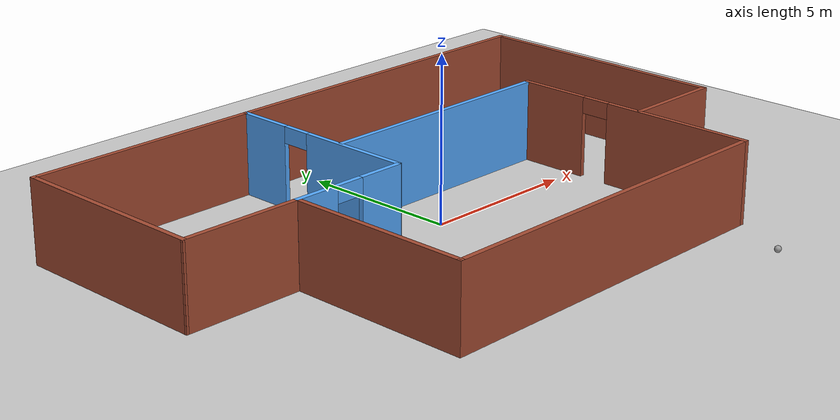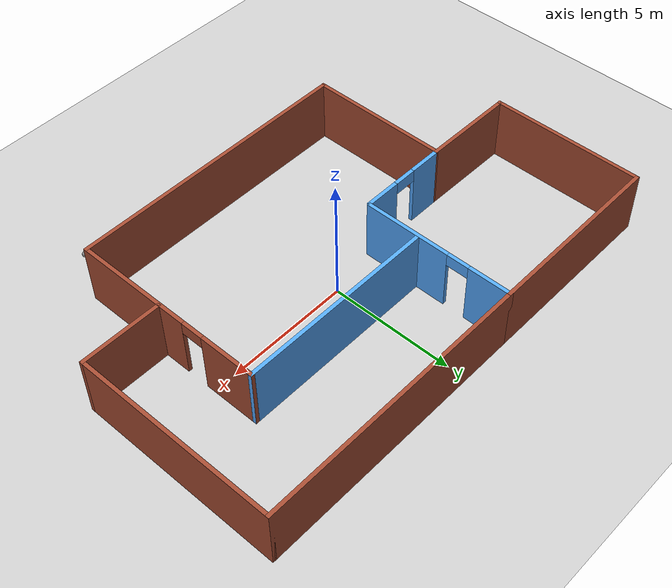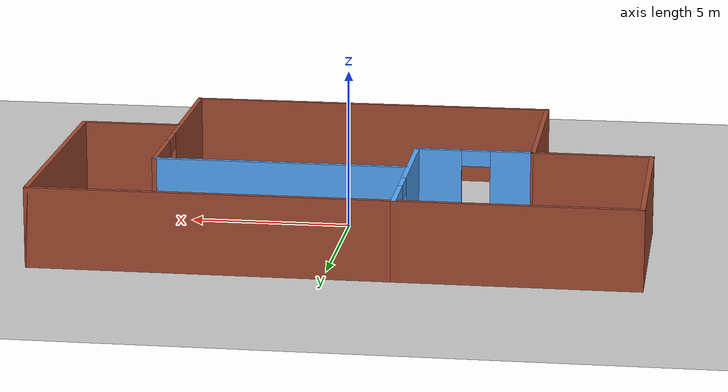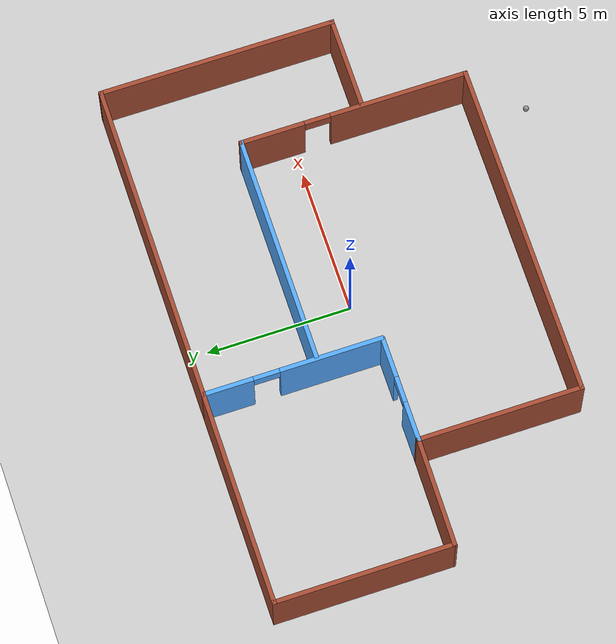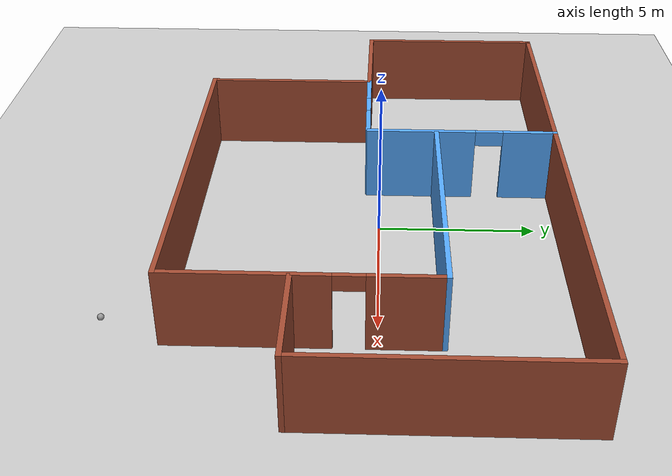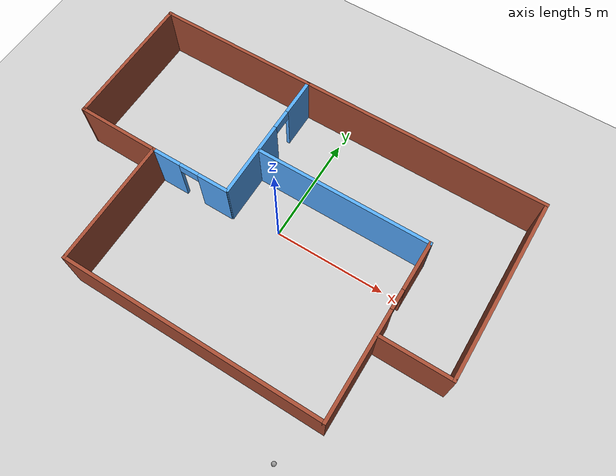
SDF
<sdf version="1.6">
 <world name="default">
  <plugin name="hello" filename="libhello.so"/>
  <light name="sun" type="directional">
   <pose>0 0 10 0 -0 0</pose>
   <diffuse>0.8 0.8 0.8 1</diffuse>
   <specular>0.2 0.2 0.2 1</specular>
   <attenuation>
    <range>1000</range>
    <constant>0.9</constant>
    <linear>0.01</linear>
    <quadratic>0.001</quadratic>
   </attenuation>
   <direction>-0.5 0.1 -0.9</direction>
  </light>
  <model name="ground_plane">
   <static>1</static>
   <link name="link">
    <collision name="collision">
     <geometry><plane><normal>0 0 1</normal><size>100 100</size></plane></geometry>
     <surface>
      <contact><collide_bitmask>65535</collide_bitmask></contact>
      <friction><ode><mu>100</mu><mu2>50</mu2></ode></friction>
     </surface>
    </collision>
    <visual name="visual">
     <cast_shadows>0</cast_shadows>
     <geometry><plane><normal>0 0 1</normal><size>100 100</size></plane></geometry>
     <material>
      <script><uri>file://media/materials/scripts/gazebo.material</uri><name>Gazebo/Grey</name></script>
     </material>
    </visual>
   </link>
  </model>
  <gravity>0 0 -9.8</gravity>
  <magnetic_field>6e-06 2.3e-05 -4.2e-05</magnetic_field>
  <atmosphere type="adiabatic"/>
  <physics name="default_physics" default="0" type="ode">
   <max_step_size>0.001</max_step_size>
   <real_time_factor>1</real_time_factor>
   <real_time_update_rate>1000</real_time_update_rate>
  </physics>
  <scene><ambient>0.4 0.4 0.4 1</ambient><background>0.7 0.7 0.7 1</background><shadows>1</shadows></scene>
  <spherical_coordinates>
   <surface_model>EARTH_WGS84</surface_model>
   <latitude_deg>0</latitude_deg>
   <longitude_deg>0</longitude_deg>
   <elevation>0</elevation>
   <heading_deg>0</heading_deg>
  </spherical_coordinates>
  <model name="building_0">
   <pose>-0.23034 -0.13472 0 0 -0 0</pose>
   <link name="Wall_47">
    <collision name="Wall_47_Collision">
     <geometry><box><size>6.25 0.15 2.5</size></box></geometry>
     <pose>0 0 1.25 0 -0 0</pose>
    </collision>
    <visual name="Wall_47_Visual">
     <pose>0 0 1.25 0 -0 0</pose>
     <geometry><box><size>6.25 0.15 2.5</size></box></geometry>
     <material>
      <script><uri>file://media/materials/scripts/gazebo.material</uri><name>Gazebo/Bricks</name></script>
      <ambient>1 1 1 1</ambient>
     </material>
     <meta><layer>0</layer></meta>
    </visual>
    <pose>-9.22464 2.81793 0 0 -0 1.5708</pose>
   </link>
   <link name="Wall_48">
    <collision name="Wall_48_Collision">
     <geometry><box><size>7.5 0.15 2.5</size></box></geometry>
     <pose>0 0 1.25 0 -0 0</pose>
    </collision>
    <visual name="Wall_48_Visual">
     <pose>0 0 1.25 0 -0 0</pose>
     <geometry><box><size>7.5 0.15 2.5</size></box></geometry>
     <material>
      <script><uri>file://media/materials/scripts/gazebo.material</uri><name>Gazebo/Bricks</name></script>
      <ambient>1 1 1 1</ambient>
     </material>
     <meta><layer>0</layer></meta>
    </visual>
    <pose>-5.54964 5.86794 0 0 -0 0</pose>
   </link>
   <link name="Wall_49">
    <pose>-1.87464 2.81793 0 0 0 -1.5708</pose>
    <visual name="Wall_49_Visual_0">
     <pose>-2.2354 0 1.25 0 -0 0</pose>
     <geometry><box><size>1.7792 0.15 2.5</size></box></geometry>
     <material>
      <script><uri>file://media/materials/scripts/gazebo.material</uri><name>Gazebo/Grey</name></script>
      <ambient>0.333333 0.666667 1 1</ambient>
     </material>
     <meta><layer>0</layer></meta>
    </visual>
    <collision name="Wall_49_Collision_0">
     <geometry><box><size>1.7792 0.15 2.5</size></box></geometry>
     <pose>-2.2354 0 1.25 0 -0 0</pose>
    </collision>
    <visual name="Wall_49_Visual_1">
     <pose>1.3396 0 1.25 0 -0 0</pose>
     <geometry><box><size>3.5708 0.15 2.5</size></box></geometry>
     <material>
      <script><uri>file://media/materials/scripts/gazebo.material</uri><name>Gazebo/Grey</name></script>
      <ambient>0.333333 0.666667 1 1</ambient>
     </material>
     <meta><layer>0</layer></meta>
    </visual>
    <collision name="Wall_49_Collision_1">
     <geometry><box><size>3.5708 0.15 2.5</size></box></geometry>
     <pose>1.3396 0 1.25 0 -0 0</pose>
    </collision>
    <visual name="Wall_49_Visual_2">
     <pose>-0.895797 0 2.25 0 -0 0</pose>
     <geometry><box><size>0.9 0.15 0.5</size></box></geometry>
     <material>
      <script><uri>file://media/materials/scripts/gazebo.material</uri><name>Gazebo/Grey</name></script>
      <ambient>0.333333 0.666667 1 1</ambient>
     </material>
     <meta><layer>0</layer></meta>
    </visual>
    <collision name="Wall_49_Collision_2">
     <geometry><box><size>0.9 0.15 0.5</size></box></geometry>
     <pose>-0.895797 0 2.25 0 -0 0</pose>
    </collision>
   </link>
   <link name="Wall_52">
    <collision name="Wall_52_Collision">
     <geometry><box><size>5.75 0.15 2.5</size></box></geometry>
     <pose>0 0 1.25 0 -0 0</pose>
    </collision>
    <visual name="Wall_52_Visual">
     <pose>0 0 1.25 0 -0 0</pose>
     <geometry><box><size>5.75 0.15 2.5</size></box></geometry>
     <material>
      <script><uri>file://media/materials/scripts/gazebo.material</uri><name>Gazebo/Bricks</name></script>
      <ambient>1 1 1 1</ambient>
     </material>
     <meta><layer>0</layer></meta>
    </visual>
    <pose>-5.52994 -3.06793 0 0 0 -1.5708</pose>
   </link>
   <link name="Wall_53">
    <collision name="Wall_53_Collision">
     <geometry><box><size>11.75 0.15 2.5</size></box></geometry>
     <pose>0 0 1.25 0 -0 0</pose>
    </collision>
    <visual name="Wall_53_Visual">
     <pose>0 0 1.25 0 -0 0</pose>
     <geometry><box><size>11.75 0.15 2.5</size></box></geometry>
     <material>
      <script><uri>file://media/materials/scripts/gazebo.material</uri><name>Gazebo/Bricks</name></script>
      <ambient>1 1 1 1</ambient>
     </material>
     <meta><layer>0</layer></meta>
    </visual>
    <pose>0.270063 -5.86794 0 0 -0 0</pose>
   </link>
   <link name="Wall_54">
    <pose>6.07006 -1.94294 0 0 -0 1.5708</pose>
    <visual name="Wall_54_Visual_0">
     <pose>-1.58479 0 1.25 0 -0 0</pose>
     <geometry><box><size>4.83042 0.15 2.5</size></box></geometry>
     <material>
      <script><uri>file://media/materials/scripts/gazebo.material</uri><name>Gazebo/Bricks</name></script>
      <ambient>1 1 1 1</ambient>
     </material>
     <meta><layer>0</layer></meta>
    </visual>
    <collision name="Wall_54_Collision_0">
     <geometry><box><size>4.83042 0.15 2.5</size></box></geometry>
     <pose>-1.58479 0 1.25 0 -0 0</pose>
    </collision>
    <visual name="Wall_54_Visual_1">
     <pose>2.86521 0 1.25 0 -0 0</pose>
     <geometry><box><size>2.26958 0.15 2.5</size></box></geometry>
     <material>
      <script><uri>file://media/materials/scripts/gazebo.material</uri><name>Gazebo/Bricks</name></script>
      <ambient>1 1 1 1</ambient>
     </material>
     <meta><layer>0</layer></meta>
    </visual>
    <collision name="Wall_54_Collision_1">
     <geometry><box><size>2.26958 0.15 2.5</size></box></geometry>
     <pose>2.86521 0 1.25 0 -0 0</pose>
    </collision>
    <visual name="Wall_54_Visual_2">
     <pose>1.28042 0 2.25 0 -0 0</pose>
     <geometry><box><size>0.9 0.15 0.5</size></box></geometry>
     <material>
      <script><uri>file://media/materials/scripts/gazebo.material</uri><name>Gazebo/Bricks</name></script>
      <ambient>1 1 1 1</ambient>
     </material>
     <meta><layer>0</layer></meta>
    </visual>
    <collision name="Wall_54_Collision_2">
     <geometry><box><size>0.9 0.15 0.5</size></box></geometry>
     <pose>1.28042 0 2.25 0 -0 0</pose>
    </collision>
   </link>
   <link name="Wall_55">
    <collision name="Wall_55_Collision">
     <geometry><box><size>8 0.15 2.5</size></box></geometry>
     <pose>0 0 1.25 0 -0 0</pose>
    </collision>
    <visual name="Wall_55_Visual">
     <pose>0 0 1.25 0 -0 0</pose>
     <geometry><box><size>8 0.15 2.5</size></box></geometry>
     <material>
      <script><uri>file://media/materials/scripts/gazebo.material</uri><name>Gazebo/Grey</name></script>
      <ambient>0.333333 0.666667 1 1</ambient>
     </material>
     <meta><layer>0</layer></meta>
    </visual>
    <pose>2.14506 1.98206 0 0 -0 3.14159</pose>
   </link>
   <link name="Wall_57">
    <collision name="Wall_57_Collision">
     <geometry><box><size>11.25 0.15 2.5</size></box></geometry>
     <pose>0 0 1.25 0 -0 0</pose>
    </collision>
    <visual name="Wall_57_Visual">
     <pose>0 0 1.25 0 -0 0</pose>
     <geometry><box><size>11.25 0.15 2.5</size></box></geometry>
     <material>
      <script><uri>file://media/materials/scripts/gazebo.material</uri><name>Gazebo/Bricks</name></script>
      <ambient>1 1 1 1</ambient>
     </material>
     <meta><layer>0</layer></meta>
    </visual>
    <pose>3.67536 5.86794 0 0 -0 0</pose>
   </link>
   <link name="Wall_58">
    <collision name="Wall_58_Collision">
     <geometry><box><size>8.25 0.15 2.5</size></box></geometry>
     <pose>0 0 1.25 0 -0 0</pose>
    </collision>
    <visual name="Wall_58_Visual">
     <pose>0 0 1.25 0 -0 0</pose>
     <geometry><box><size>8.25 0.15 2.5</size></box></geometry>
     <material>
      <script><uri>file://media/materials/scripts/gazebo.material</uri><name>Gazebo/Bricks</name></script>
      <ambient>1 1 1 1</ambient>
     </material>
     <meta><layer>0</layer></meta>
    </visual>
    <pose>9.22536 1.81794 0 0 0 -1.5708</pose>
   </link>
   <link name="Wall_59">
    <collision name="Wall_59_Collision">
     <geometry><box><size>3.25 0.15 2.5</size></box></geometry>
     <pose>0 0 1.25 0 -0 0</pose>
    </collision>
    <visual name="Wall_59_Visual">
     <pose>0 0 1.25 0 -0 0</pose>
     <geometry><box><size>3.25 0.15 2.5</size></box></geometry>
     <material>
      <script><uri>file://media/materials/scripts/gazebo.material</uri><name>Gazebo/Bricks</name></script>
      <ambient>1 1 1 1</ambient>
     </material>
     <meta><layer>0</layer></meta>
    </visual>
    <pose>7.67536 -2.23206 0 0 -0 3.14159</pose>
   </link>
   <link name="Wall_61">
    <collision name="Wall_61_Collision">
     <geometry><box><size>3.84488 0.15 2.5</size></box></geometry>
     <pose>0 0 1.25 0 -0 0</pose>
    </collision>
    <visual name="Wall_61_Visual">
     <pose>0 0 1.25 0 -0 0</pose>
     <geometry><box><size>3.84488 0.15 2.5</size></box></geometry>
     <material>
      <script><uri>file://media/materials/scripts/gazebo.material</uri><name>Gazebo/Bricks</name></script>
      <ambient>1 1 1 1</ambient>
     </material>
     <meta><layer>0</layer></meta>
    </visual>
    <pose>-7.37729 -0.25 0 0 0 -0.009708</pose>
   </link>
   <link name="Wall_62">
    <pose>-3.72994 -0.267936 0 0 -0 0</pose>
    <visual name="Wall_62_Visual_0">
     <pose>-1.16573 0 1.25 0 -0 0</pose>
     <geometry><box><size>1.41854 0.15 2.5</size></box></geometry>
     <material>
      <script><uri>file://media/materials/scripts/gazebo.material</uri><name>Gazebo/Grey</name></script>
      <ambient>0.333333 0.666667 1 1</ambient>
     </material>
     <meta><layer>0</layer></meta>
    </visual>
    <collision name="Wall_62_Collision_0">
     <geometry><box><size>1.41854 0.15 2.5</size></box></geometry>
     <pose>-1.16573 0 1.25 0 -0 0</pose>
    </collision>
    <visual name="Wall_62_Visual_1">
     <pose>1.15927 0 1.25 0 -0 0</pose>
     <geometry><box><size>1.43146 0.15 2.5</size></box></geometry>
     <material>
      <script><uri>file://media/materials/scripts/gazebo.material</uri><name>Gazebo/Grey</name></script>
      <ambient>0.333333 0.666667 1 1</ambient>
     </material>
     <meta><layer>0</layer></meta>
    </visual>
    <collision name="Wall_62_Collision_1">
     <geometry><box><size>1.43146 0.15 2.5</size></box></geometry>
     <pose>1.15927 0 1.25 0 -0 0</pose>
    </collision>
    <visual name="Wall_62_Visual_2">
     <pose>-0.006456 0 2.25 0 -0 0</pose>
     <geometry><box><size>0.9 0.15 0.5</size></box></geometry>
     <material>
      <script><uri>file://media/materials/scripts/gazebo.material</uri><name>Gazebo/Grey</name></script>
      <ambient>0.333333 0.666667 1 1</ambient>
     </material>
     <meta><layer>0</layer></meta>
    </visual>
    <collision name="Wall_62_Collision_2">
     <geometry><box><size>0.9 0.15 0.5</size></box></geometry>
     <pose>-0.006456 0 2.25 0 -0 0</pose>
    </collision>
   </link>
   <static>1</static>
  </model>
  <model name="my_ball">
   <link name="link_0">
    <inertial>
     <mass>1</mass>
     <inertia><ixx>0.1</ixx><ixy>0</ixy><ixz>0</ixz><iyy>0.1</iyy><iyz>0</iyz><izz>0.1</izz></inertia>
    </inertial>
    <visual name="visual">
     <geometry><sphere><radius>0.1</radius></sphere></geometry>
     <material>
      <lighting>1</lighting>
      <script><uri>file://media/materials/scripts/gazebo.material</uri><name>Gazebo/Grey</name></script>
      <shader type="pixel"><normal_map>__default__</normal_map></shader>
      <ambient>1 1 1 1</ambient>
      <diffuse>1 1 1 1</diffuse>
      <specular>1 1 1 1</specular>
      <emissive>1 1 1 1</emissive>
     </material>
    </visual>
    <collision name="collision">
     <geometry><sphere><radius>0.1</radius></sphere></geometry>
     <surface>
      <friction>
       <ode><mu>1</mu><mu2>1</mu2><fdir1>0 0 0</fdir1><slip1>0</slip1><slip2>0</slip2></ode>
       <torsional>
        <coefficient>1</coefficient>
        <patch_radius>0</patch_radius>
        <surface_radius>0</surface_radius>
        <use_patch_radius>1</use_patch_radius>
        <ode><slip>0</slip></ode>
       </torsional>
      </friction>
      <bounce><restitution_coefficient>0</restitution_coefficient><threshold>1e+06</threshold></bounce>
      <contact>
       <collide_without_contact>0</collide_without_contact>
       <collide_without_contact_bitmask>1</collide_without_contact_bitmask>
       <collide_bitmask>1</collide_bitmask>
       <ode>
        <soft_cfm>0</soft_cfm>
        <soft_erp>0.2</soft_erp>
        <kp>1e+13</kp>
        <kd>1</kd>
        <max_vel>0.01</max_vel>
        <min_depth>0</min_depth>
       </ode>
       <bullet>
        <split_impulse>1</split_impulse>
        <split_impulse_penetration_threshold>-0.01</split_impulse_penetration_threshold>
        <soft_cfm>0</soft_cfm>
        <soft_erp>0.2</soft_erp>
        <kp>1e+13</kp>
        <kd>1</kd>
       </bullet>
      </contact>
     </surface>
    </collision>
   </link>
   <static>0</static>
   <pose>4.86744 -7.90529 0.1 0 -0 0</pose>
  </model>
 </world>
</sdf>
